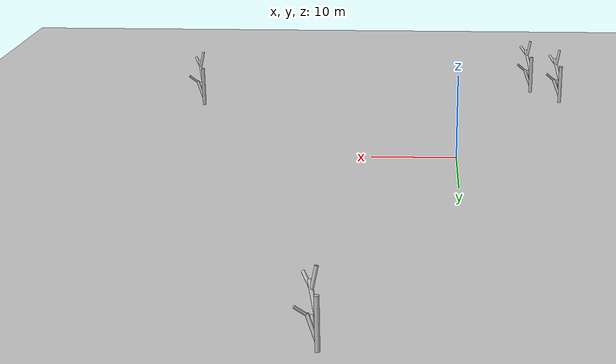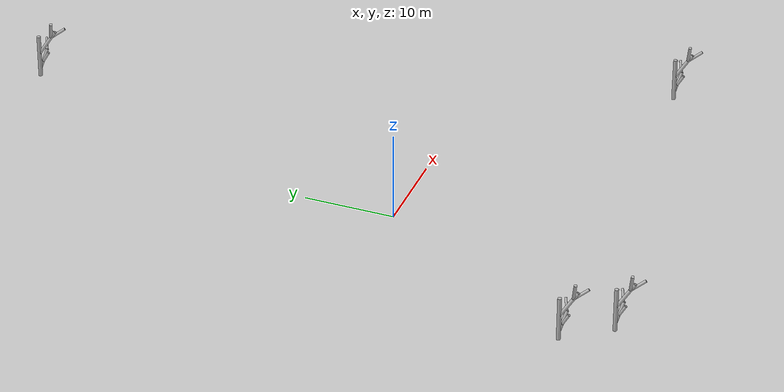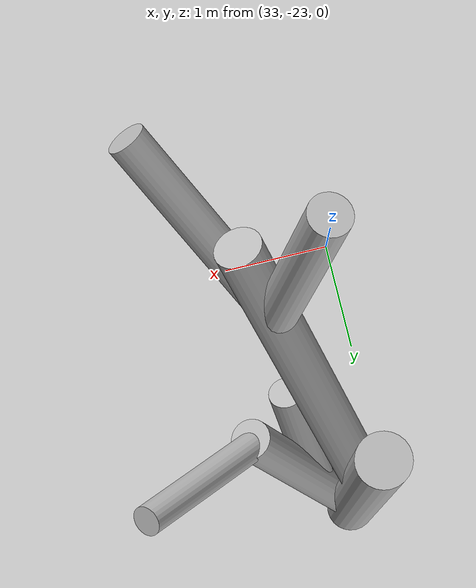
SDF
<sdf version="1.7">
 <world name="default">
  <light name="sun" type="directional">
   <pose>0 0 10 0 -0 0</pose>
   <diffuse>0.8 0.8 0.8 1</diffuse>
   <specular>0.2 0.2 0.2 1</specular>
   <attenuation>
    <range>1000</range>
    <constant>0.9</constant>
    <linear>0.01</linear>
    <quadratic>0.001</quadratic>
   </attenuation>
   <direction>-0.5 0.1 -0.9</direction>
   <spot><inner_angle>0</inner_angle><outer_angle>0</outer_angle><falloff>0</falloff></spot>
  </light>
  <model name="ground_plane">
   <static>1</static>
   <link name="link">
    <collision name="collision">
     <geometry><plane><normal>0 0 1</normal><size>100 100</size></plane></geometry>
     <surface>
      <contact><collide_bitmask>65535</collide_bitmask></contact>
      <friction><ode><mu>100</mu><mu2>50</mu2></ode></friction>
     </surface>
    </collision>
    <visual name="visual">
     <cast_shadows>0</cast_shadows>
     <geometry><plane><normal>0 0 1</normal><size>100 100</size></plane></geometry>
     <material>
      <script><uri>file://media/materials/scripts/gazebo.material</uri><name>Gazebo/Grey</name></script>
     </material>
    </visual>
   </link>
  </model>
  <plugin name="ros_interface_plugin" filename="librotors_gazebo_ros_interface_plugin.so"/>
  <gravity>0 0 -9.8</gravity>
  <magnetic_field>6e-06 2.3e-05 -4.2e-05</magnetic_field>
  <atmosphere type="adiabatic"/>
  <physics type="ode">
   <ode>
    <solver><type>quick</type><iters>1000</iters><sor>1.3</sor></solver>
    <constraints>
     <cfm>0</cfm>
     <erp>0.2</erp>
     <contact_max_correcting_vel>100</contact_max_correcting_vel>
     <contact_surface_layer>0.001</contact_surface_layer>
    </constraints>
   </ode>
   <max_step_size>0.01</max_step_size>
   <real_time_factor>1</real_time_factor>
   <real_time_update_rate>100</real_time_update_rate>
   <gravity>0 0 -9.8</gravity>
  </physics>
  <scene><ambient>0.4 0.4 0.4 1</ambient><background>0.7 0.7 0.7 1</background><shadows>1</shadows></scene>
  <spherical_coordinates>
   <surface_model>EARTH_WGS84</surface_model>
   <latitude_deg>47.3667</latitude_deg>
   <longitude_deg>8.5500</longitude_deg>
   <elevation>500.0</elevation>
   <heading_deg>0</heading_deg>
  </spherical_coordinates>
  <model name="tree_0">
   <static>1</static>
   <link name="branch_0">
    <inertial>
     <pose>0.53488 -0.768797 3.29789 0 -0 0</pose>
     <mass>7</mass>
     <inertia>
      <ixx>35.5561</ixx>
      <ixy>0.405989</ixy>
      <ixz>-2.2084</ixz>
      <iyy>33.7719</iyy>
      <iyz>7.59887</iyz>
      <izz>11.1543</izz>
     </inertia>
    </inertial>
    <collision name="branch_0_collision_collision">
     <pose>0 0 2.5 0 -0 0</pose>
     <geometry><cylinder><length>5</length><radius>0.221587</radius></cylinder></geometry>
    </collision>
    <collision name="branch_0_fixed_joint_lump__branch_1_collision_collision_1">
     <pose>0.433928 -0.283063 1.93189 0 0.420312 -0.57801</pose>
     <geometry><cylinder><length>2.53938</length><radius>0.174187</radius></cylinder></geometry>
    </collision>
    <collision name="branch_0_fixed_joint_lump__branch_4_collision_collision_2">
     <pose>0.350432 -0.859283 4.20616 -0 0.591444 -1.18357</pose>
     <geometry><cylinder><length>3.32876</length><radius>0.189211</radius></cylinder></geometry>
    </collision>
    <collision name="branch_0_fixed_joint_lump__branch_2_collision_collision_3">
     <pose>1.3333 -0.295122 3.44989 0.556109 0.701415 1.20669</pose>
     <geometry><cylinder><length>1.48628</length><radius>0.12901</radius></cylinder></geometry>
    </collision>
    <collision name="branch_0_fixed_joint_lump__branch_3_collision_collision_4">
     <pose>0.401568 -0.555754 2.25513 -0.438492 0.291853 -2.37446</pose>
     <geometry><cylinder><length>1.41057</length><radius>0.152012</radius></cylinder></geometry>
    </collision>
    <collision name="branch_0_fixed_joint_lump__branch_5_collision_collision_5">
     <pose>0.306302 -1.41879 5.86085 -0.251365 0.038912 2.34003</pose>
     <geometry><cylinder><length>2.05964</length><radius>0.168558</radius></cylinder></geometry>
    </collision>
    <collision name="branch_0_fixed_joint_lump__branch_6_collision_collision_6">
     <pose>0.918629 -1.96956 5.38131 0.285509 0.999494 -0.710009</pose>
     <geometry><cylinder><length>1.81963</length><radius>0.156323</radius></cylinder></geometry>
    </collision>
    <visual name="branch_0_visual_visual">
     <pose>0 0 2.5 0 -0 0</pose>
     <geometry><cylinder><length>5</length><radius>0.221587</radius></cylinder></geometry>
    </visual>
    <visual name="branch_0_fixed_joint_lump__branch_1_visual_visual_1">
     <pose>0.433928 -0.283063 1.93189 0 0.420312 -0.57801</pose>
     <geometry><cylinder><length>2.53938</length><radius>0.174187</radius></cylinder></geometry>
    </visual>
    <visual name="branch_0_fixed_joint_lump__branch_4_visual_visual_2">
     <pose>0.350432 -0.859283 4.20616 -0 0.591444 -1.18357</pose>
     <geometry><cylinder><length>3.32876</length><radius>0.189211</radius></cylinder></geometry>
    </visual>
    <visual name="branch_0_fixed_joint_lump__branch_2_visual_visual_3">
     <pose>1.3333 -0.295122 3.44989 0.556109 0.701415 1.20669</pose>
     <geometry><cylinder><length>1.48628</length><radius>0.12901</radius></cylinder></geometry>
    </visual>
    <visual name="branch_0_fixed_joint_lump__branch_3_visual_visual_4">
     <pose>0.401568 -0.555754 2.25513 -0.438492 0.291853 -2.37446</pose>
     <geometry><cylinder><length>1.41057</length><radius>0.152012</radius></cylinder></geometry>
    </visual>
    <visual name="branch_0_fixed_joint_lump__branch_5_visual_visual_5">
     <pose>0.306302 -1.41879 5.86085 -0.251365 0.038912 2.34003</pose>
     <geometry><cylinder><length>2.05964</length><radius>0.168558</radius></cylinder></geometry>
    </visual>
    <visual name="branch_0_fixed_joint_lump__branch_6_visual_visual_6">
     <pose>0.918629 -1.96956 5.38131 0.285509 0.999494 -0.710009</pose>
     <geometry><cylinder><length>1.81963</length><radius>0.156323</radius></cylinder></geometry>
    </visual>
   </link>
   <pose>33.3852 -20.505 0 0 -0 0</pose>
  </model>
  <model name="tree_1">
   <static>1</static>
   <link name="branch_0">
    <inertial>
     <pose>0.53488 -0.768797 3.29789 0 -0 0</pose>
     <mass>7</mass>
     <inertia>
      <ixx>35.5561</ixx>
      <ixy>0.405989</ixy>
      <ixz>-2.2084</ixz>
      <iyy>33.7719</iyy>
      <iyz>7.59887</iyz>
      <izz>11.1543</izz>
     </inertia>
    </inertial>
    <collision name="branch_0_collision_collision">
     <pose>0 0 2.5 0 -0 0</pose>
     <geometry><cylinder><length>5</length><radius>0.221587</radius></cylinder></geometry>
    </collision>
    <collision name="branch_0_fixed_joint_lump__branch_1_collision_collision_1">
     <pose>0.433928 -0.283063 1.93189 0 0.420312 -0.57801</pose>
     <geometry><cylinder><length>2.53938</length><radius>0.174187</radius></cylinder></geometry>
    </collision>
    <collision name="branch_0_fixed_joint_lump__branch_4_collision_collision_2">
     <pose>0.350432 -0.859283 4.20616 -0 0.591444 -1.18357</pose>
     <geometry><cylinder><length>3.32876</length><radius>0.189211</radius></cylinder></geometry>
    </collision>
    <collision name="branch_0_fixed_joint_lump__branch_2_collision_collision_3">
     <pose>1.3333 -0.295122 3.44989 0.556109 0.701415 1.20669</pose>
     <geometry><cylinder><length>1.48628</length><radius>0.12901</radius></cylinder></geometry>
    </collision>
    <collision name="branch_0_fixed_joint_lump__branch_3_collision_collision_4">
     <pose>0.401568 -0.555754 2.25513 -0.438492 0.291853 -2.37446</pose>
     <geometry><cylinder><length>1.41057</length><radius>0.152012</radius></cylinder></geometry>
    </collision>
    <collision name="branch_0_fixed_joint_lump__branch_5_collision_collision_5">
     <pose>0.306302 -1.41879 5.86085 -0.251365 0.038912 2.34003</pose>
     <geometry><cylinder><length>2.05964</length><radius>0.168558</radius></cylinder></geometry>
    </collision>
    <collision name="branch_0_fixed_joint_lump__branch_6_collision_collision_6">
     <pose>0.918629 -1.96956 5.38131 0.285509 0.999494 -0.710009</pose>
     <geometry><cylinder><length>1.81963</length><radius>0.156323</radius></cylinder></geometry>
    </collision>
    <visual name="branch_0_visual_visual">
     <pose>0 0 2.5 0 -0 0</pose>
     <geometry><cylinder><length>5</length><radius>0.221587</radius></cylinder></geometry>
    </visual>
    <visual name="branch_0_fixed_joint_lump__branch_1_visual_visual_1">
     <pose>0.433928 -0.283063 1.93189 0 0.420312 -0.57801</pose>
     <geometry><cylinder><length>2.53938</length><radius>0.174187</radius></cylinder></geometry>
    </visual>
    <visual name="branch_0_fixed_joint_lump__branch_4_visual_visual_2">
     <pose>0.350432 -0.859283 4.20616 -0 0.591444 -1.18357</pose>
     <geometry><cylinder><length>3.32876</length><radius>0.189211</radius></cylinder></geometry>
    </visual>
    <visual name="branch_0_fixed_joint_lump__branch_2_visual_visual_3">
     <pose>1.3333 -0.295122 3.44989 0.556109 0.701415 1.20669</pose>
     <geometry><cylinder><length>1.48628</length><radius>0.12901</radius></cylinder></geometry>
    </visual>
    <visual name="branch_0_fixed_joint_lump__branch_3_visual_visual_4">
     <pose>0.401568 -0.555754 2.25513 -0.438492 0.291853 -2.37446</pose>
     <geometry><cylinder><length>1.41057</length><radius>0.152012</radius></cylinder></geometry>
    </visual>
    <visual name="branch_0_fixed_joint_lump__branch_5_visual_visual_5">
     <pose>0.306302 -1.41879 5.86085 -0.251365 0.038912 2.34003</pose>
     <geometry><cylinder><length>2.05964</length><radius>0.168558</radius></cylinder></geometry>
    </visual>
    <visual name="branch_0_fixed_joint_lump__branch_6_visual_visual_6">
     <pose>0.918629 -1.96956 5.38131 0.285509 0.999494 -0.710009</pose>
     <geometry><cylinder><length>1.81963</length><radius>0.156323</radius></cylinder></geometry>
    </visual>
   </link>
   <pose>-11.0454 -28.1461 0 0 -0 0</pose>
  </model>
  <model name="tree_3">
   <static>1</static>
   <link name="branch_0">
    <inertial>
     <pose>0.53488 -0.768797 3.29789 0 -0 0</pose>
     <mass>7</mass>
     <inertia>
      <ixx>35.5561</ixx>
      <ixy>0.405989</ixy>
      <ixz>-2.2084</ixz>
      <iyy>33.7719</iyy>
      <iyz>7.59887</iyz>
      <izz>11.1543</izz>
     </inertia>
    </inertial>
    <collision name="branch_0_collision_collision">
     <pose>0 0 2.5 0 -0 0</pose>
     <geometry><cylinder><length>5</length><radius>0.221587</radius></cylinder></geometry>
    </collision>
    <collision name="branch_0_fixed_joint_lump__branch_1_collision_collision_1">
     <pose>0.433928 -0.283063 1.93189 0 0.420312 -0.57801</pose>
     <geometry><cylinder><length>2.53938</length><radius>0.174187</radius></cylinder></geometry>
    </collision>
    <collision name="branch_0_fixed_joint_lump__branch_4_collision_collision_2">
     <pose>0.350432 -0.859283 4.20616 -0 0.591444 -1.18357</pose>
     <geometry><cylinder><length>3.32876</length><radius>0.189211</radius></cylinder></geometry>
    </collision>
    <collision name="branch_0_fixed_joint_lump__branch_2_collision_collision_3">
     <pose>1.3333 -0.295122 3.44989 0.556109 0.701415 1.20669</pose>
     <geometry><cylinder><length>1.48628</length><radius>0.12901</radius></cylinder></geometry>
    </collision>
    <collision name="branch_0_fixed_joint_lump__branch_3_collision_collision_4">
     <pose>0.401568 -0.555754 2.25513 -0.438492 0.291853 -2.37446</pose>
     <geometry><cylinder><length>1.41057</length><radius>0.152012</radius></cylinder></geometry>
    </collision>
    <collision name="branch_0_fixed_joint_lump__branch_5_collision_collision_5">
     <pose>0.306302 -1.41879 5.86085 -0.251365 0.038912 2.34003</pose>
     <geometry><cylinder><length>2.05964</length><radius>0.168558</radius></cylinder></geometry>
    </collision>
    <collision name="branch_0_fixed_joint_lump__branch_6_collision_collision_6">
     <pose>0.918629 -1.96956 5.38131 0.285509 0.999494 -0.710009</pose>
     <geometry><cylinder><length>1.81963</length><radius>0.156323</radius></cylinder></geometry>
    </collision>
    <visual name="branch_0_visual_visual">
     <pose>0 0 2.5 0 -0 0</pose>
     <geometry><cylinder><length>5</length><radius>0.221587</radius></cylinder></geometry>
    </visual>
    <visual name="branch_0_fixed_joint_lump__branch_1_visual_visual_1">
     <pose>0.433928 -0.283063 1.93189 0 0.420312 -0.57801</pose>
     <geometry><cylinder><length>2.53938</length><radius>0.174187</radius></cylinder></geometry>
    </visual>
    <visual name="branch_0_fixed_joint_lump__branch_4_visual_visual_2">
     <pose>0.350432 -0.859283 4.20616 -0 0.591444 -1.18357</pose>
     <geometry><cylinder><length>3.32876</length><radius>0.189211</radius></cylinder></geometry>
    </visual>
    <visual name="branch_0_fixed_joint_lump__branch_2_visual_visual_3">
     <pose>1.3333 -0.295122 3.44989 0.556109 0.701415 1.20669</pose>
     <geometry><cylinder><length>1.48628</length><radius>0.12901</radius></cylinder></geometry>
    </visual>
    <visual name="branch_0_fixed_joint_lump__branch_3_visual_visual_4">
     <pose>0.401568 -0.555754 2.25513 -0.438492 0.291853 -2.37446</pose>
     <geometry><cylinder><length>1.41057</length><radius>0.152012</radius></cylinder></geometry>
    </visual>
    <visual name="branch_0_fixed_joint_lump__branch_5_visual_visual_5">
     <pose>0.306302 -1.41879 5.86085 -0.251365 0.038912 2.34003</pose>
     <geometry><cylinder><length>2.05964</length><radius>0.168558</radius></cylinder></geometry>
    </visual>
    <visual name="branch_0_fixed_joint_lump__branch_6_visual_visual_6">
     <pose>0.918629 -1.96956 5.38131 0.285509 0.999494 -0.710009</pose>
     <geometry><cylinder><length>1.81963</length><radius>0.156323</radius></cylinder></geometry>
    </visual>
   </link>
   <pose>-14.5644 -23.3243 0 0 -0 0</pose>
  </model>
  <model name="tree_7">
   <static>1</static>
   <link name="branch_0">
    <inertial>
     <pose>0.53488 -0.768797 3.29789 0 -0 0</pose>
     <mass>7</mass>
     <inertia>
      <ixx>35.5561</ixx>
      <ixy>0.405989</ixy>
      <ixz>-2.2084</ixz>
      <iyy>33.7719</iyy>
      <iyz>7.59887</iyz>
      <izz>11.1543</izz>
     </inertia>
    </inertial>
    <collision name="branch_0_collision_collision">
     <pose>0 0 2.5 0 -0 0</pose>
     <geometry><cylinder><length>5</length><radius>0.221587</radius></cylinder></geometry>
    </collision>
    <collision name="branch_0_fixed_joint_lump__branch_1_collision_collision_1">
     <pose>0.433928 -0.283063 1.93189 0 0.420312 -0.57801</pose>
     <geometry><cylinder><length>2.53938</length><radius>0.174187</radius></cylinder></geometry>
    </collision>
    <collision name="branch_0_fixed_joint_lump__branch_4_collision_collision_2">
     <pose>0.350432 -0.859283 4.20616 -0 0.591444 -1.18357</pose>
     <geometry><cylinder><length>3.32876</length><radius>0.189211</radius></cylinder></geometry>
    </collision>
    <collision name="branch_0_fixed_joint_lump__branch_2_collision_collision_3">
     <pose>1.3333 -0.295122 3.44989 0.556109 0.701415 1.20669</pose>
     <geometry><cylinder><length>1.48628</length><radius>0.12901</radius></cylinder></geometry>
    </collision>
    <collision name="branch_0_fixed_joint_lump__branch_3_collision_collision_4">
     <pose>0.401568 -0.555754 2.25513 -0.438492 0.291853 -2.37446</pose>
     <geometry><cylinder><length>1.41057</length><radius>0.152012</radius></cylinder></geometry>
    </collision>
    <collision name="branch_0_fixed_joint_lump__branch_5_collision_collision_5">
     <pose>0.306302 -1.41879 5.86085 -0.251365 0.038912 2.34003</pose>
     <geometry><cylinder><length>2.05964</length><radius>0.168558</radius></cylinder></geometry>
    </collision>
    <collision name="branch_0_fixed_joint_lump__branch_6_collision_collision_6">
     <pose>0.918629 -1.96956 5.38131 0.285509 0.999494 -0.710009</pose>
     <geometry><cylinder><length>1.81963</length><radius>0.156323</radius></cylinder></geometry>
    </collision>
    <visual name="branch_0_visual_visual">
     <pose>0 0 2.5 0 -0 0</pose>
     <geometry><cylinder><length>5</length><radius>0.221587</radius></cylinder></geometry>
    </visual>
    <visual name="branch_0_fixed_joint_lump__branch_1_visual_visual_1">
     <pose>0.433928 -0.283063 1.93189 0 0.420312 -0.57801</pose>
     <geometry><cylinder><length>2.53938</length><radius>0.174187</radius></cylinder></geometry>
    </visual>
    <visual name="branch_0_fixed_joint_lump__branch_4_visual_visual_2">
     <pose>0.350432 -0.859283 4.20616 -0 0.591444 -1.18357</pose>
     <geometry><cylinder><length>3.32876</length><radius>0.189211</radius></cylinder></geometry>
    </visual>
    <visual name="branch_0_fixed_joint_lump__branch_2_visual_visual_3">
     <pose>1.3333 -0.295122 3.44989 0.556109 0.701415 1.20669</pose>
     <geometry><cylinder><length>1.48628</length><radius>0.12901</radius></cylinder></geometry>
    </visual>
    <visual name="branch_0_fixed_joint_lump__branch_3_visual_visual_4">
     <pose>0.401568 -0.555754 2.25513 -0.438492 0.291853 -2.37446</pose>
     <geometry><cylinder><length>1.41057</length><radius>0.152012</radius></cylinder></geometry>
    </visual>
    <visual name="branch_0_fixed_joint_lump__branch_5_visual_visual_5">
     <pose>0.306302 -1.41879 5.86085 -0.251365 0.038912 2.34003</pose>
     <geometry><cylinder><length>2.05964</length><radius>0.168558</radius></cylinder></geometry>
    </visual>
    <visual name="branch_0_fixed_joint_lump__branch_6_visual_visual_6">
     <pose>0.918629 -1.96956 5.38131 0.285509 0.999494 -0.710009</pose>
     <geometry><cylinder><length>1.81963</length><radius>0.156323</radius></cylinder></geometry>
    </visual>
   </link>
   <pose>12.4117 47.1039 0 0 -0 0</pose>
  </model>
 </world>
</sdf>
